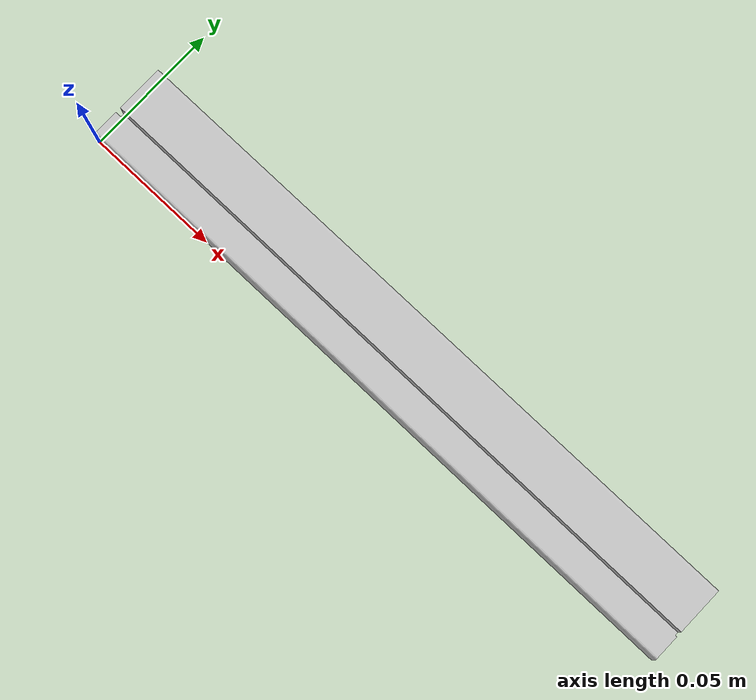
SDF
<?xml version='1.0'?>
<sdf version="1.6">
<model name="card_stand">
  <pose>0 0 0 0 0 0</pose>
    <link name="link">
      <inertial>
        <mass>0.0562</mass>
        <inertia>
          <ixx>0.293</ixx>
          <ixy>0.0</ixy>
          <ixz>0.0</ixz>
          <iyy>0.005</iyy>
          <iyz>0.0</iyz>
          <izz>0.297</izz>
        </inertia>
      </inertial>
      <collision name="collision">
        <geometry>
	  <mesh>
		  <uri>model://card_stand/card_stand_2mm.dae</uri>
          </mesh>
        </geometry>
      </collision>
      <visual name="visual">
        <geometry>
          <mesh>
		  <uri>model://card_stand/card_stand_2mm.dae</uri>
          </mesh>
        </geometry>
      </visual>
    </link>
  </model>
</sdf>
